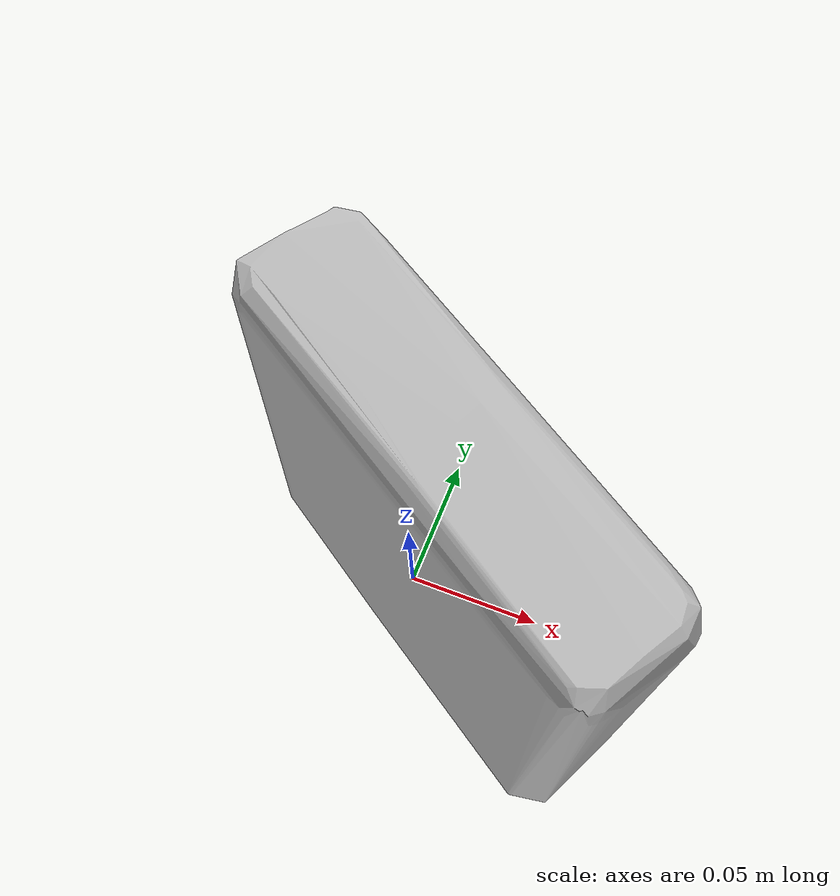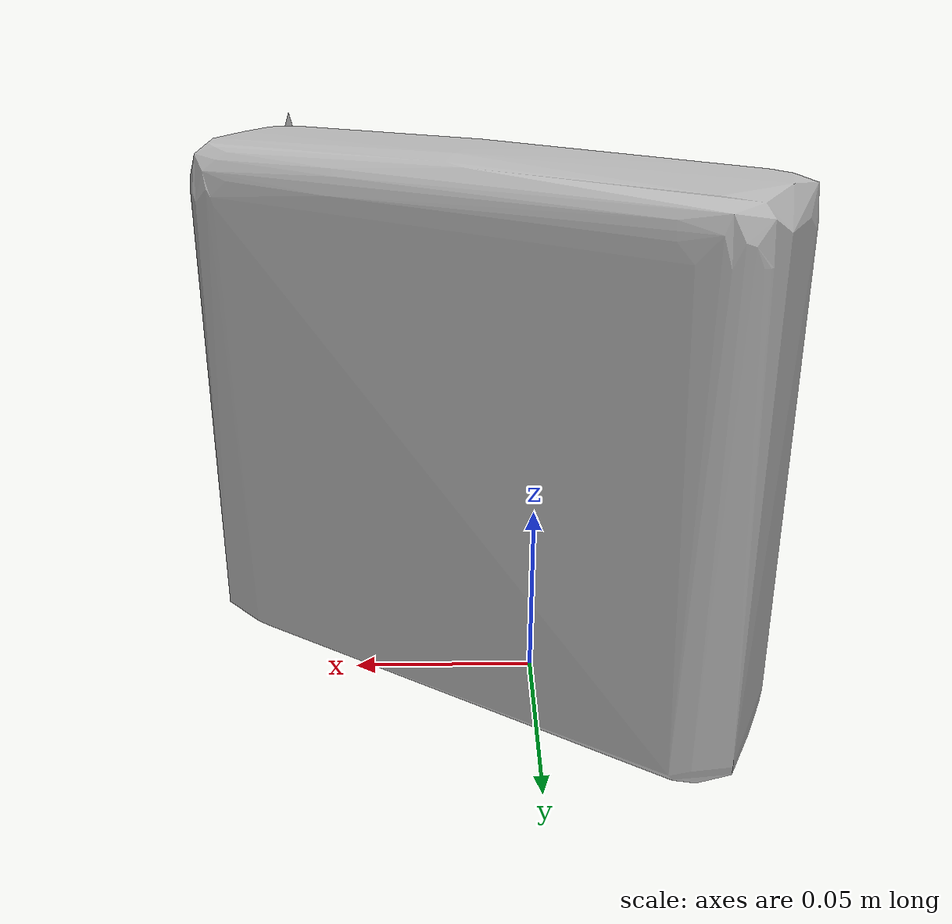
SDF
<?xml version='1.0'?>
<sdf version="1.4">
  <model name="nature_valley_sweet_and_salty_nut_cashew">
    <static>false</static>
    <link name="link">
      <inertial>
        <pose>0.01578973083462967 -0.002594172977169135 0.07213066522105015 1.5690148076244077 -0.01402046296903289 -2.144653414241004</pose>
        <mass>0.10342441953584942</mass>
        <inertia>
          <ixx>0.0003653737959306068</ixx>
          <ixy>1.3365548086385733e-21</ixy>
          <ixz>-8.57358070716239e-21</ixz>
          <iyy>0.00022417022119397304</iyy>
          <iyz>4.841710783556037e-22</iyz>
          <izz>0.00018140033651496112</izz>
        </inertia>
      </inertial>
      <collision name="collision">
        <geometry>
          <mesh>
            <!-- Use a downsampled mesh for collisions -->
            <uri>model:///nature_valley_sweet_and_salty_nut_cashew/nature_valley_sweet_and_salty_nut_cashew_250_collision.obj</uri>
	        </mesh>
        </geometry>
        <surface>
      </surface>
      </collision>
      <visual name="visual">
        <geometry>
          <mesh>
            <uri>model:///nature_valley_sweet_and_salty_nut_cashew/optimized_tsdf_texture_mapped_mesh.obj</uri>
	        </mesh>
        </geometry>
        <material>
          <script>
            <uri>model:///nature_valley_sweet_and_salty_nut_cashew/nature_valley_sweet_and_salty_nut_cashew.material</uri>
            <name>nature_valley_sweet_and_salty_nut_cashew</name>
          </script>
        </material>
      </visual>
    </link>
  </model>
</sdf>
